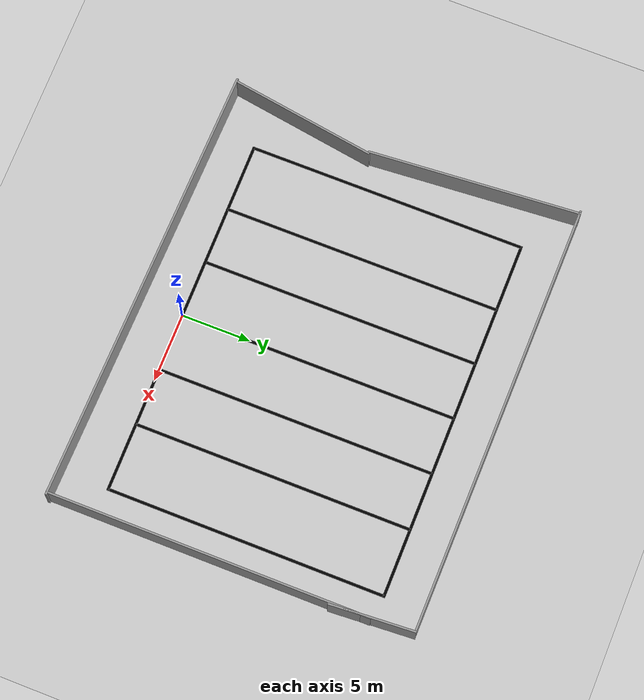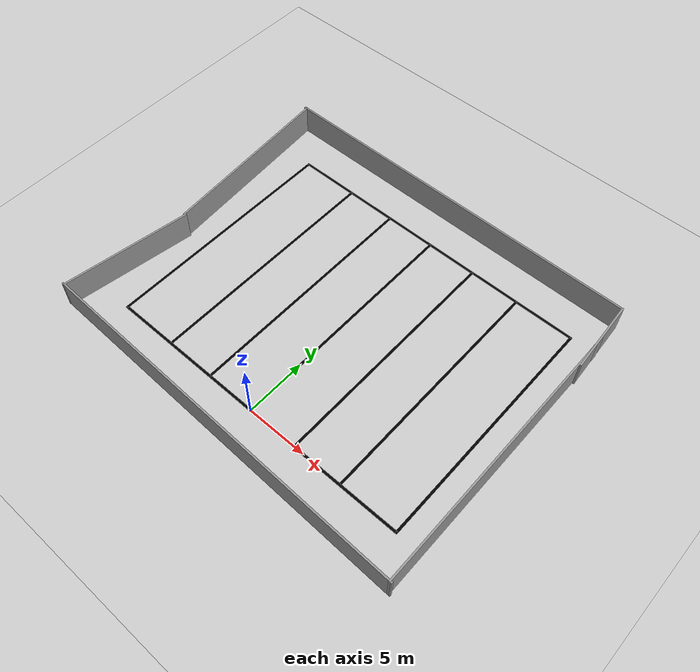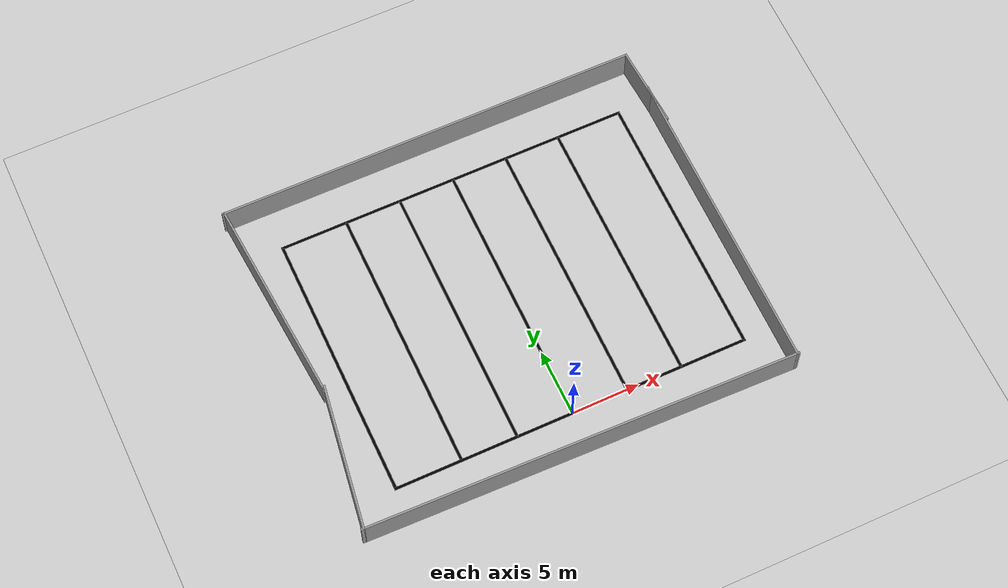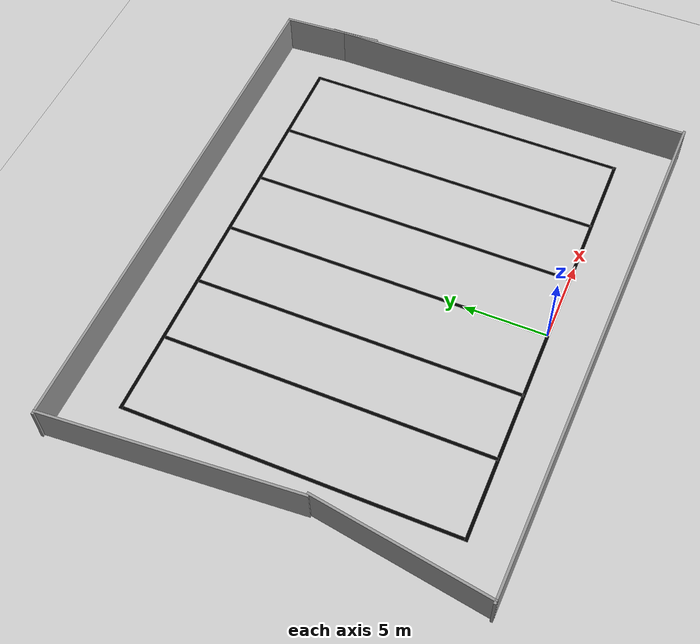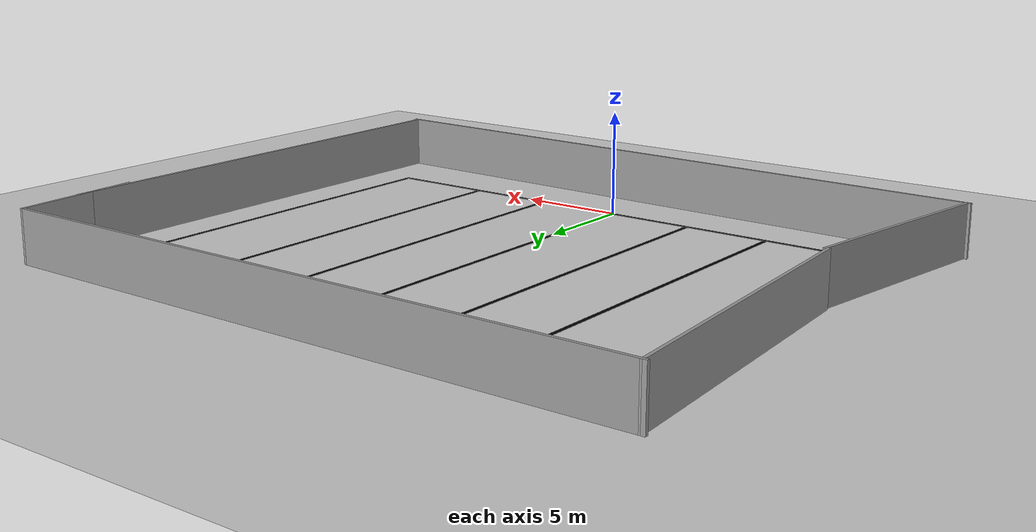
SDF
<sdf version="1.7">
 <world name="parkur">
  <light name="sun" type="directional">
   <pose>0 0 10 0 -0 0</pose>
   <diffuse>0.8 0.8 0.8 1</diffuse>
   <specular>0.2 0.2 0.2 1</specular>
   <attenuation>
    <range>1000</range>
    <constant>0.9</constant>
    <linear>0.01</linear>
    <quadratic>0.001</quadratic>
   </attenuation>
   <direction>-0.5 0.1 -0.9</direction>
   <spot><inner_angle>0</inner_angle><outer_angle>0</outer_angle><falloff>0</falloff></spot>
  </light>
  <model name="ground_plane">
   <static>1</static>
   <link name="link">
    <collision name="collision">
     <geometry><plane><normal>0 0 1</normal><size>100 100</size></plane></geometry>
     <surface><friction><ode><mu>100</mu><mu2>50</mu2></ode></friction></surface>
    </collision>
    <visual name="visual">
     <cast_shadows>0</cast_shadows>
     <geometry><plane><normal>0 0 1</normal><size>100 100</size></plane></geometry>
     <material>
      <script><uri>file://media/materials/scripts/gazebo.material</uri><name>Gazebo/Grey</name></script>
     </material>
    </visual>
   </link>
  </model>
  <model name="left_line">
   <static>1</static>
   <link name="line_link">
    <visual name="line_visual">
     <geometry><box><size>0.2 20 0.01</size></box></geometry>
     <material><ambient>0 0 0 1</ambient><diffuse>0 0 0 1</diffuse></material>
    </visual>
   </link>
   <pose>-13.2 10 0.005 0 -0 0</pose>
  </model>
  <model name="right_line">
   <static>1</static>
   <link name="line_link">
    <visual name="line_visual">
     <geometry><box><size>0.2 20 0.01</size></box></geometry>
     <material><ambient>0 0 0 1</ambient><diffuse>0 0 0 1</diffuse></material>
    </visual>
   </link>
   <pose>13.2 10 0.005 0 -0 0</pose>
  </model>
  <model name="top_line">
   <static>1</static>
   <link name="line_link">
    <visual name="line_visual">
     <geometry><box><size>26.6 0.2 0.01</size></box></geometry>
     <material><ambient>0 0 0 1</ambient><diffuse>0 0 0 1</diffuse></material>
    </visual>
   </link>
   <pose>0 20 0.005 0 -0 0</pose>
  </model>
  <model name="bottom_line">
   <static>1</static>
   <link name="line_link">
    <visual name="line_visual">
     <geometry><box><size>26.6 0.2 0.01</size></box></geometry>
     <material><ambient>0 0 0 1</ambient><diffuse>0 0 0 1</diffuse></material>
    </visual>
   </link>
   <pose>0 0 0.005 0 -0 0</pose>
  </model>
  <model name="vertical_line_1">
   <static>1</static>
   <link name="line_link">
    <visual name="line_visual">
     <geometry><box><size>0.2 20 0.01</size></box></geometry>
     <material><ambient>0 0 0 1</ambient><diffuse>0 0 0 1</diffuse></material>
    </visual>
   </link>
   <pose>-8.32 10 0.005 0 -0 0</pose>
  </model>
  <model name="vertical_line_2">
   <static>1</static>
   <link name="line_link">
    <visual name="line_visual">
     <geometry><box><size>0.2 20 0.01</size></box></geometry>
     <material><ambient>0 0 0 1</ambient><diffuse>0 0 0 1</diffuse></material>
    </visual>
   </link>
   <pose>-4.16 10 0.005 0 -0 0</pose>
  </model>
  <model name="vertical_line_3">
   <static>1</static>
   <link name="line_link">
    <visual name="line_visual">
     <geometry><box><size>0.2 20 0.01</size></box></geometry>
     <material><ambient>0 0 0 1</ambient><diffuse>0 0 0 1</diffuse></material>
    </visual>
   </link>
   <pose>0 10 0.005 0 -0 0</pose>
  </model>
  <model name="vertical_line_4">
   <static>1</static>
   <link name="line_link">
    <visual name="line_visual">
     <geometry><box><size>0.2 20 0.01</size></box></geometry>
     <material><ambient>0 0 0 1</ambient><diffuse>0 0 0 1</diffuse></material>
    </visual>
   </link>
   <pose>4.16 10 0.005 0 -0 0</pose>
  </model>
  <model name="vertical_line_5">
   <static>1</static>
   <link name="line_link">
    <visual name="line_visual">
     <geometry><box><size>0.2 20 0.01</size></box></geometry>
     <material><ambient>0 0 0 1</ambient><diffuse>0 0 0 1</diffuse></material>
    </visual>
   </link>
   <pose>8.32 10 0.005 0 -0 0</pose>
  </model>
  <gravity>0 0 -9.8</gravity>
  <magnetic_field>6e-06 2.3e-05 -4.2e-05</magnetic_field>
  <atmosphere type="adiabatic"/>
  <physics type="ode">
   <max_step_size>0.001</max_step_size>
   <real_time_factor>1</real_time_factor>
   <real_time_update_rate>1000</real_time_update_rate>
  </physics>
  <scene><ambient>0.4 0.4 0.4 1</ambient><background>0.7 0.7 0.7 1</background><shadows>1</shadows></scene>
  <audio><device>default</device></audio>
  <spherical_coordinates>
   <surface_model>EARTH_WGS84</surface_model>
   <latitude_deg>0</latitude_deg>
   <longitude_deg>0</longitude_deg>
   <elevation>0</elevation>
   <heading_deg>0</heading_deg>
  </spherical_coordinates>
  <model name="Untitled">
   <pose>-0.597502 9.83375 0 0 -0 0</pose>
   <link name="Wall_10">
    <collision name="Wall_10_Collision">
     <geometry><box><size>15.2891 0.15 2.5</size></box></geometry>
     <pose>0 0 1.25 0 -0 0</pose>
    </collision>
    <visual name="Wall_10_Visual">
     <pose>0 0 1.25 0 -0 0</pose>
     <geometry><box><size>15.2891 0.15 2.5</size></box></geometry>
     <material>
      <script><uri>file://media/materials/scripts/gazebo.material</uri><name>Gazebo/Grey</name></script>
      <ambient>1 1 1 1</ambient>
     </material>
     <meta><layer>0</layer></meta>
    </visual>
    <pose>-15.0094 5.62378 0 0 -0 -1.49733</pose>
   </link>
   <link name="Wall_4">
    <collision name="Wall_4_Collision">
     <geometry><box><size>10.7811 0.15 2.5</size></box></geometry>
     <pose>0 0 1.25 0 -0 0</pose>
    </collision>
    <visual name="Wall_4_Visual">
     <pose>0 0 1.25 0 -0 0</pose>
     <geometry><box><size>10.7811 0.15 2.5</size></box></geometry>
     <material>
      <script><uri>file://media/materials/scripts/gazebo.material</uri><name>Gazebo/Grey</name></script>
      <ambient>1 1 1 1</ambient>
     </material>
     <meta><layer>0</layer></meta>
    </visual>
    <pose>-15.1345 -7.17967 0 0 -0 -1.72271</pose>
   </link>
   <link name="Wall_5">
    <collision name="Wall_5_Collision">
     <geometry><box><size>32.2685 0.15 2.5</size></box></geometry>
     <pose>0 0 1.25 0 -0 0</pose>
    </collision>
    <visual name="Wall_5_Visual">
     <pose>0 0 1.25 0 -0 0</pose>
     <geometry><box><size>32.2685 0.15 2.5</size></box></geometry>
     <material>
      <script><uri>file://media/materials/scripts/gazebo.material</uri><name>Gazebo/Grey</name></script>
      <ambient>1 1 1 1</ambient>
     </material>
     <meta><layer>0</layer></meta>
    </visual>
    <pose>-0.007648 -12.8053 0 0 -0 -0.02312</pose>
   </link>
   <link name="Wall_6">
    <collision name="Wall_6_Collision">
     <geometry><box><size>23.25 0.15 2.5</size></box></geometry>
     <pose>0 0 1.25 0 -0 0</pose>
    </collision>
    <visual name="Wall_6_Visual">
     <pose>0 0 1.25 0 -0 0</pose>
     <geometry><box><size>23.25 0.15 2.5</size></box></geometry>
     <material>
      <script><uri>file://media/materials/scripts/gazebo.material</uri><name>Gazebo/Grey</name></script>
      <ambient>1 1 1 1</ambient>
     </material>
     <meta><layer>0</layer></meta>
    </visual>
    <pose>15.9236 -1.62651 0 0 -0 1.5708</pose>
   </link>
   <link name="Wall_8">
    <collision name="Wall_8_Collision">
     <geometry><box><size>6.13031 0.15 2.5</size></box></geometry>
     <pose>0 0 1.25 0 -0 0</pose>
    </collision>
    <visual name="Wall_8_Visual">
     <pose>0 0 1.25 0 -0 0</pose>
     <geometry><box><size>6.13031 0.15 2.5</size></box></geometry>
     <material>
      <script><uri>file://media/materials/scripts/gazebo.material</uri><name>Gazebo/Grey</name></script>
      <ambient>1 1 1 1</ambient>
     </material>
     <meta><layer>0</layer></meta>
    </visual>
    <pose>15.8742 10.0648 0 0 -0 1.63292</pose>
   </link>
   <link name="Wall_9">
    <collision name="Wall_9_Collision">
     <geometry><box><size>31.4039 0.15 2.5</size></box></geometry>
     <pose>0 0 1.25 0 -0 0</pose>
    </collision>
    <visual name="Wall_9_Visual">
     <pose>0 0 1.25 0 -0 0</pose>
     <geometry><box><size>31.4039 0.15 2.5</size></box></geometry>
     <material>
      <script><uri>file://media/materials/scripts/gazebo.material</uri><name>Gazebo/Grey</name></script>
      <ambient>1 1 1 1</ambient>
     </material>
     <meta><layer>0</layer></meta>
    </visual>
    <pose>-0.062009 13.111 0 0 -0 3.13763</pose>
   </link>
   <static>1</static>
  </model>
 </world>
</sdf>
